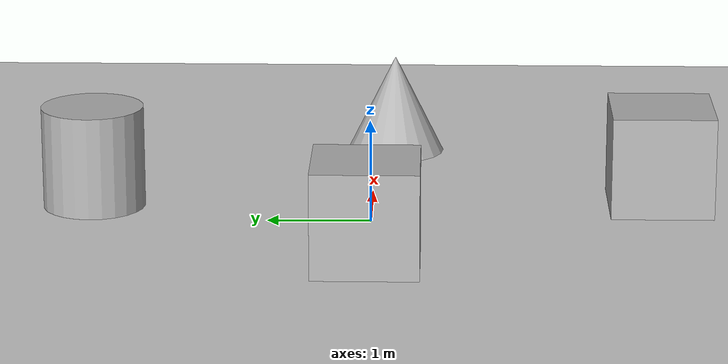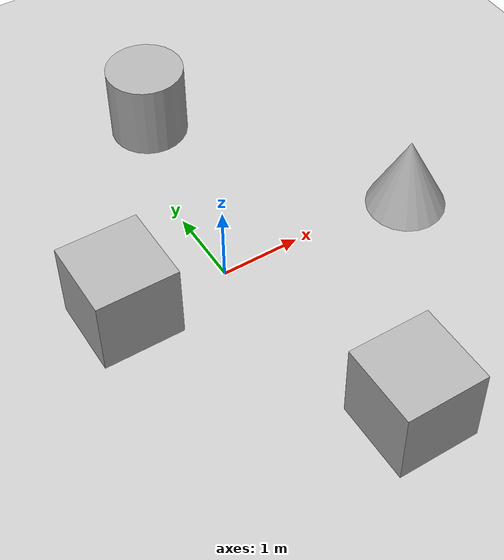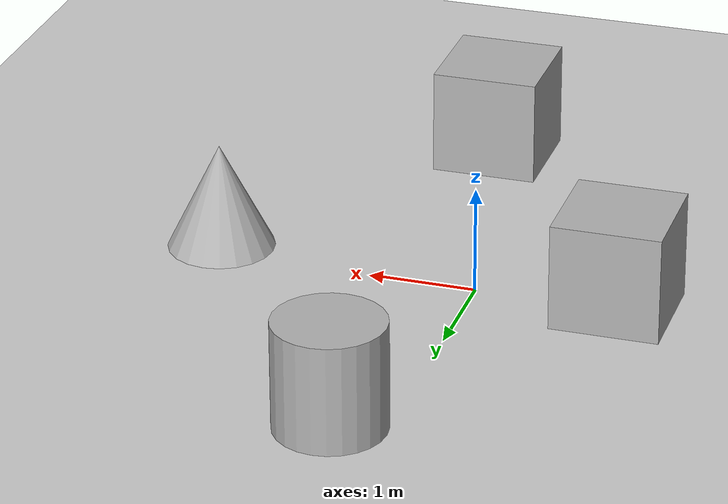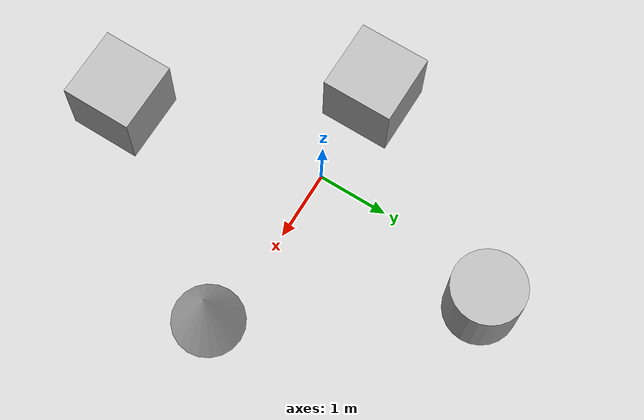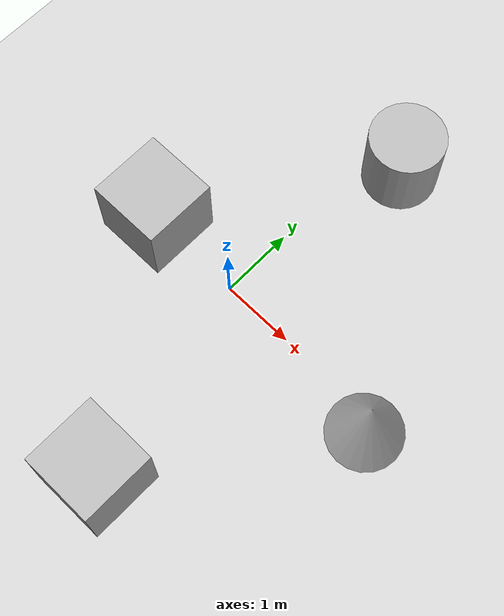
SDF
<sdf version='1.10'>
  <world name='empty'>
    <physics name='1ms' type='ignored'>
      <max_step_size>0.001</max_step_size>
      <real_time_factor>1</real_time_factor>
      <real_time_update_rate>1000</real_time_update_rate>
    </physics>
    <plugin name='gz::sim::systems::Physics' filename='gz-sim-physics-system'/>
    <plugin name='gz::sim::systems::UserCommands' filename='gz-sim-user-commands-system'/>
    <plugin name='gz::sim::systems::SceneBroadcaster' filename='gz-sim-scene-broadcaster-system'/>
    <plugin name='gz::sim::systems::Contact' filename='gz-sim-contact-system'/>
    <plugin name='gz::sim::systems::Sensors' filename='gz-sim-sensors-system'>
      <render_engine>ogre2</render_engine>
    </plugin>
    <plugin name='gz::sim::systems::Imu' filename='gz-sim-imu-system'/>
    <gravity>0 0 -9.8000000000000007</gravity>
    <magnetic_field>5.5644999999999998e-06 2.2875799999999999e-05 -4.2388400000000002e-05</magnetic_field>
    <atmosphere type='adiabatic'/>
    <scene>
      <ambient>0.400000006 0.400000006 0.400000006 1</ambient>
      <background>0.699999988 0.699999988 0.699999988 1</background>
      <shadows>true</shadows>
    </scene>
    <model name='ground_plane'>
      <static>true</static>
      <link name='link'>
        <collision name='collision'>
          <geometry>
            <plane>
              <normal>0 0 1</normal>
              <size>100 100</size>
            </plane>
          </geometry>
          <surface>
            <friction>
              <ode>
                <mu>50</mu>
              </ode>
            </friction>
            <bounce/>
            <contact/>
          </surface>
        </collision>
        <visual name='visual'>
          <geometry>
            <plane>
              <normal>0 0 1</normal>
              <size>100 100</size>
            </plane>
          </geometry>
          <material>
            <ambient>0.800000012 0.800000012 0.800000012 1</ambient>
            <diffuse>0.800000012 0.800000012 0.800000012 1</diffuse>
            <specular>0.800000012 0.800000012 0.800000012 1</specular>
          </material>
        </visual>
        <pose>0 0 0 0 0 0</pose>
        <inertial>
          <pose>0 0 0 0 0 0</pose>
          <mass>1</mass>
          <inertia>
            <ixx>1</ixx>
            <ixy>0</ixy>
            <ixz>0</ixz>
            <iyy>1</iyy>
            <iyz>0</iyz>
            <izz>1</izz>
          </inertia>
        </inertial>
        <enable_wind>false</enable_wind>
      </link>
      <pose>0 0 0 0 0 0</pose>
      <self_collide>false</self_collide>
    </model>
    <model name='cylinder'>
      <pose>0.46819101432297927 2.7233063178120376 0.49999942638036005 -2.6618610347181903e-19 5.3035685830858556e-19 1.2692614454876257e-21</pose>
      <link name='cylinder_link'>
        <inertial>
          <inertia>
            <ixx>0.14580000000000001</ixx>
            <ixy>0</ixy>
            <ixz>0</ixz>
            <iyy>0.14580000000000001</iyy>
            <iyz>0</iyz>
            <izz>0.125</izz>
          </inertia>
          <mass>1</mass>
          <pose>0 0 0 0 0 0</pose>
        </inertial>
        <collision name='cylinder_collision'>
          <geometry>
            <cylinder>
              <radius>0.5</radius>
              <length>1</length>
            </cylinder>
          </geometry>
          <surface>
            <friction>
              <ode/>
            </friction>
            <bounce/>
            <contact/>
          </surface>
        </collision>
        <visual name='cylinder_visual'>
          <geometry>
            <cylinder>
              <radius>0.5</radius>
              <length>1</length>
            </cylinder>
          </geometry>
          <material>
            <ambient>0.300000012 0.300000012 0.300000012 1</ambient>
            <diffuse>0.699999988 0.699999988 0.699999988 1</diffuse>
            <specular>1 1 1 1</specular>
          </material>
        </visual>
        <pose>0 0 0 0 0 0</pose>
        <enable_wind>false</enable_wind>
      </link>
      <static>false</static>
      <self_collide>false</self_collide>
    </model>
    <model name='cone'>
      <pose>2.4971677819971707 -0.19563517033441941 0.49999999993296756 5.2548185098935488e-17 -7.7132841039543629e-10 -1.4630000701806774e-22</pose>
      <link name='cone_link'>
        <inertial>
          <inertia>
            <ixx>0.074999999999999997</ixx>
            <ixy>0</ixy>
            <ixz>0</ixz>
            <iyy>0.074999999999999997</iyy>
            <iyz>0</iyz>
            <izz>0.074999999999999997</izz>
          </inertia>
          <mass>1</mass>
          <pose>0 0 0 0 0 0</pose>
        </inertial>
        <collision name='cone_collision'>
          <geometry>
            <cone>
              <radius>0.5</radius>
              <length>1</length>
            </cone>
          </geometry>
          <surface>
            <friction>
              <ode/>
            </friction>
            <bounce/>
            <contact/>
          </surface>
        </collision>
        <visual name='cone_visual'>
          <geometry>
            <cone>
              <radius>0.5</radius>
              <length>1</length>
            </cone>
          </geometry>
          <material>
            <ambient>0.300000012 0.300000012 0.300000012 1</ambient>
            <diffuse>0.699999988 0.699999988 0.699999988 1</diffuse>
            <specular>1 1 1 1</specular>
          </material>
        </visual>
        <pose>0 0 0 0 0 0</pose>
        <enable_wind>false</enable_wind>
      </link>
      <static>false</static>
      <self_collide>false</self_collide>
    </model>
    <model name='box'>
      <pose>-1.3143010328234608 0.012028775861313325 0.49999999990199806 6.2287739151293738e-22 9.3279666454713669e-22 -3.6315533669320137e-22</pose>
      <link name='box_link'>
        <inertial>
          <inertia>
            <ixx>0.16666</ixx>
            <ixy>0</ixy>
            <ixz>0</ixz>
            <iyy>0.16666</iyy>
            <iyz>0</iyz>
            <izz>0.16666</izz>
          </inertia>
          <mass>1</mass>
          <pose>0 0 0 0 0 0</pose>
        </inertial>
        <collision name='box_collision'>
          <geometry>
            <box>
              <size>1 1 1</size>
            </box>
          </geometry>
          <surface>
            <friction>
              <ode/>
            </friction>
            <bounce/>
            <contact/>
          </surface>
        </collision>
        <visual name='box_visual'>
          <geometry>
            <box>
              <size>1 1 1</size>
            </box>
          </geometry>
          <material>
            <ambient>0.300000012 0.300000012 0.300000012 1</ambient>
            <diffuse>0.699999988 0.699999988 0.699999988 1</diffuse>
            <specular>1 1 1 1</specular>
          </material>
        </visual>
        <pose>0 0 0 0 0 0</pose>
        <enable_wind>false</enable_wind>
      </link>
      <static>false</static>
      <self_collide>false</self_collide>
    </model>
    <model name='box_0'>
      <pose>0.59665334932642455 -2.8187812957716623 0.49999999990199806 6.2287739151293738e-22 9.3279666454713669e-22 -3.6315533669320137e-22</pose>
      <link name='box_link'>
        <inertial>
          <inertia>
            <ixx>0.16666</ixx>
            <ixy>0</ixy>
            <ixz>0</ixz>
            <iyy>0.16666</iyy>
            <iyz>0</iyz>
            <izz>0.16666</izz>
          </inertia>
          <mass>1</mass>
          <pose>0 0 0 0 0 0</pose>
        </inertial>
        <collision name='box_collision'>
          <geometry>
            <box>
              <size>1 1 1</size>
            </box>
          </geometry>
          <surface>
            <friction>
              <ode/>
            </friction>
            <bounce/>
            <contact/>
          </surface>
        </collision>
        <visual name='box_visual'>
          <geometry>
            <box>
              <size>1 1 1</size>
            </box>
          </geometry>
          <material>
            <ambient>0.300000012 0.300000012 0.300000012 1</ambient>
            <diffuse>0.699999988 0.699999988 0.699999988 1</diffuse>
            <specular>1 1 1 1</specular>
          </material>
        </visual>
        <pose>0 0 0 0 0 0</pose>
        <enable_wind>false</enable_wind>
      </link>
      <static>false</static>
      <self_collide>false</self_collide>
    </model>
    <light name='sun' type='directional'>
      <pose>0 0 10 0 0 0</pose>
      <cast_shadows>true</cast_shadows>
      <intensity>1</intensity>
      <direction>-0.5 0.10000000000000001 -0.90000000000000002</direction>
      <diffuse>0.800000012 0.800000012 0.800000012 1</diffuse>
      <specular>0.200000003 0.200000003 0.200000003 1</specular>
      <attenuation>
        <range>1000</range>
        <linear>0.01</linear>
        <constant>0.90000000000000002</constant>
        <quadratic>0.001</quadratic>
      </attenuation>
      <spot>
        <inner_angle>0</inner_angle>
        <outer_angle>0</outer_angle>
        <falloff>0</falloff>
      </spot>
    </light>
  </world>
</sdf>
